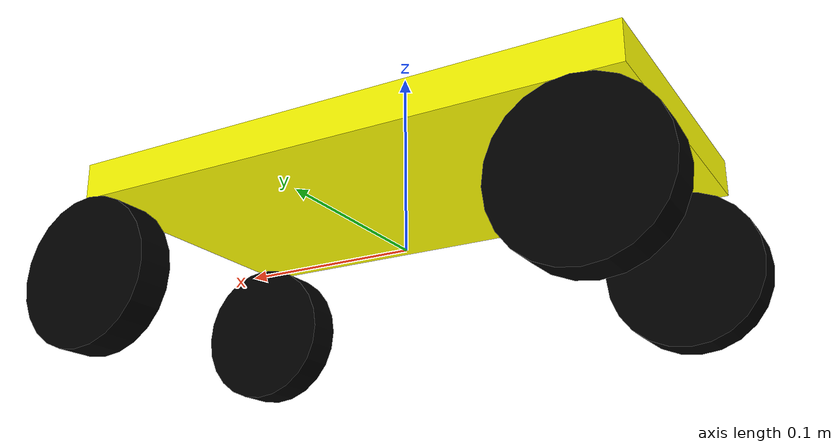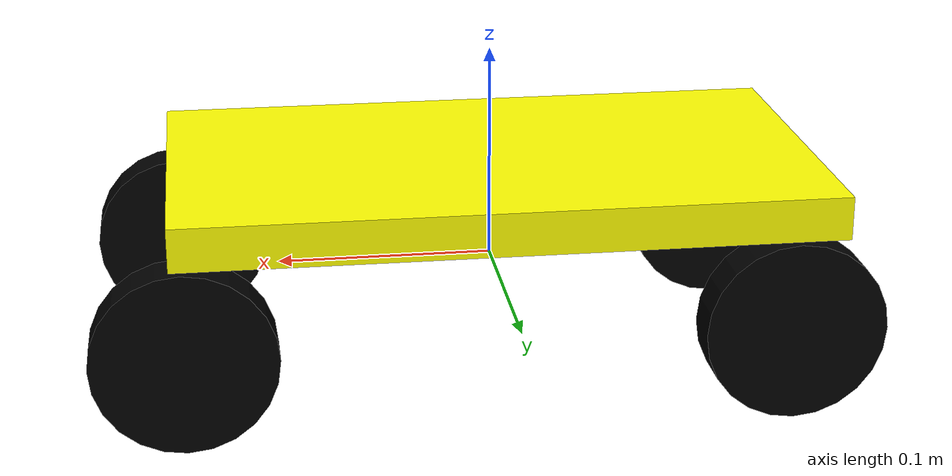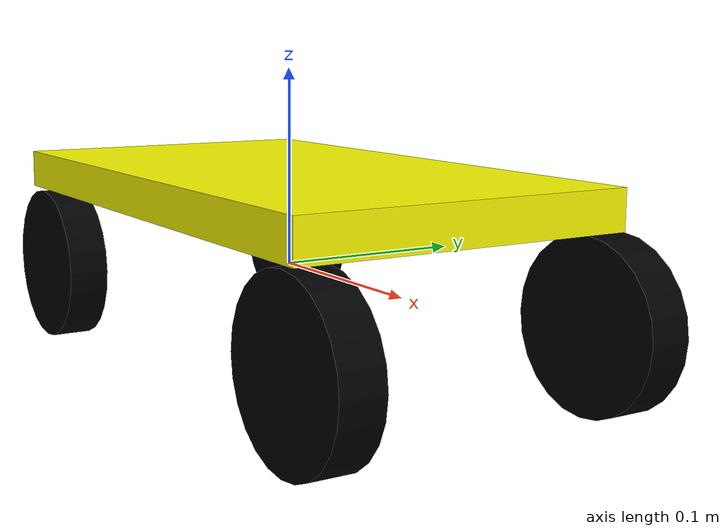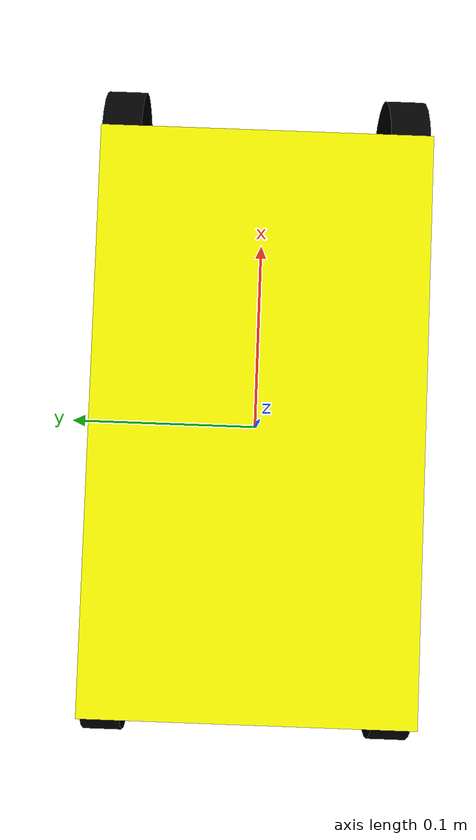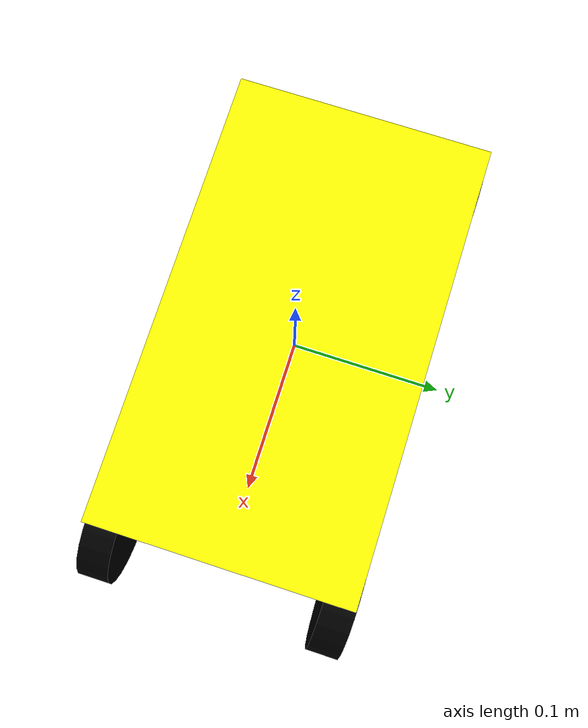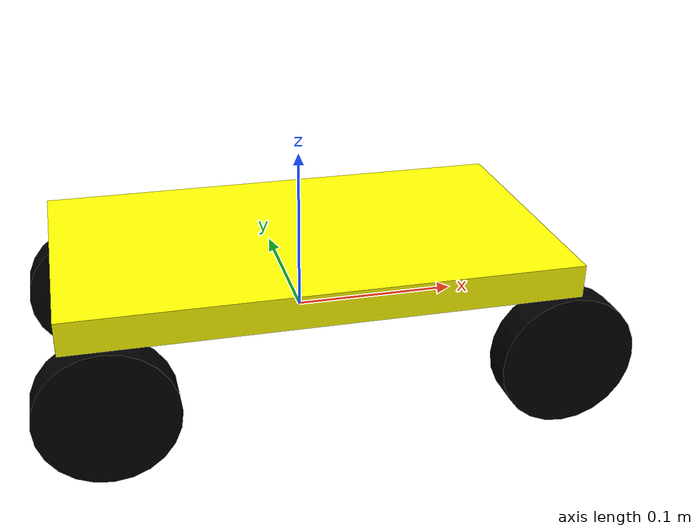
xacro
<?xml version="1.0"?>
<robot name="tamiyabot" xmlns:xacro="http://www.ros.org/wiki/xacro">

    <!-- Load Simulated or Real Hardware Interfaces -->
    <xacro:arg name="is_sim" default="true"/>

    <material name="white">
        <color rgba="1 1 1 1"/>
    </material>
    <material name="yellow">
        <color rgba="1 1 0 1"/>
    </material>
    <material name="black">
        <color rgba="0 0 0 1"/>
    </material>

    <xacro:property name="base_length" value="0.3" />
    <xacro:property name="base_width" value="0.17" />
    <xacro:property name="base_height" value="0.02" />
    <xacro:property name="base_mass" value="2.5" /> <!--Kg-->

    <!-- Wheel link dimensions -->
    <xacro:property name="wheel_radius" value="0.0415" />
    <xacro:property name="wheel_thickness" value="0.021" />
    <xacro:property name="wheel_mass" value="1" />
    <xacro:property name="wheel_down" value="-0.052" />
    <!-- Properties -->
    <xacro:property name="steer_effort" value="1000.0"/>
    <xacro:property name="steer_velocity" value="5.0"/>
    <xacro:property name="steer_limit_deg" value="45.0"/>
    <!-- Math constants -->
    <xacro:property name="deg_to_rad" value="0.01745329251994329577"/>

    <link name="base_footprint"/>

    <link name="base_link">
        <inertial>
            <mass value="1.5"/>
            <inertia ixx="0.1" ixy="0.0" ixz="0.0" iyy="0.1" iyz="0.0" izz="0.1"/>
        </inertial>
        <visual>
            <origin xyz="0.0 0.0 0.0" rpy="0.0 0.0 0.0"/>
            <geometry>
                <box size="0.3 0.17 0.02"/>
            </geometry>
            <material name="yellow"/>
        </visual>
        <collision>
            <origin xyz="0.0 0.0 0.0" rpy="0.0 0.0 0.0"/>
            <geometry>
                <box size="0.3 0.17 0.02"/>
            </geometry>
        </collision>
    </link>

    <link name="front_left_wheel">
        <inertial>
            <mass value="1.5"/>
            <inertia ixx="0.1" ixy="0.0" ixz="0.0" iyy="0.1" iyz="0.0" izz="0.1"/>
        </inertial>
        <visual>
            <origin xyz="0.0 0.0 0.0" rpy="1.5708 0.0 0.0"/>
            <geometry>
                <cylinder radius="${wheel_radius}" length="${wheel_thickness}"/>
            </geometry>
            <material name="black"/>
        </visual>
        <collision>
            <origin xyz="0.0 0.0 0.0" rpy="1.5708 0.0 0.0"/>
            <geometry>
                <cylinder radius="${wheel_radius}" length="${wheel_thickness}"/>
            </geometry>
        </collision>
    </link>

    <link name="left_kingpin">
        <inertial>
            <mass value="1.5"/>
            <inertia ixx="0.1" ixy="0.0" ixz="0.0" iyy="0.1" iyz="0.0" izz="0.1"/>
        </inertial>
        <visual>
            <origin xyz="0.0 0.0 0.0" rpy="0.0 0.0 0.0"/>
            <geometry>
                <cylinder radius="0.01" length="0.02"/>
            </geometry>
            <material name="white"/>
        </visual>
        <collision>
            <origin xyz="0.0 0.0 0.0" rpy="0.0 0.0 0.0"/>
            <geometry>
                <cylinder radius="0.01" length="0.02"/>
            </geometry>
        </collision>
    </link>

    <link name="right_kingpin">
        <inertial>
            <mass value="1.5"/>
            <inertia ixx="0.1" ixy="0.0" ixz="0.0" iyy="0.1" iyz="0.0" izz="0.1"/>
        </inertial>
        <visual>
            <origin xyz="0.0 0.0 0.0" rpy="0.0 0.0 0.0"/>
            <geometry>
                <cylinder radius="0.01" length="0.02"/>
            </geometry>
            <material name="white"/>
        </visual>
        <collision>
            <origin xyz="0.0 0.0 0.0" rpy="0.0 0.0 0.0"/>
            <geometry>
                <cylinder radius="0.01" length="0.02"/>
            </geometry>
        </collision>
    </link>

    <link name="front_right_wheel">
        <inertial>
            <mass value="1.5"/>
            <inertia ixx="0.1" ixy="0.0" ixz="0.0" iyy="0.1" iyz="0.0" izz="0.1"/>
        </inertial>
        <visual>
            <origin xyz="0.0 0.0 0.0" rpy="1.5708 0.0 0.0"/>
            <geometry>
                <cylinder radius="${wheel_radius}" length="${wheel_thickness}"/>
            </geometry>
            <material name="black"/>
        </visual>
        <collision>
            <origin xyz="0.0 0.0 0.0" rpy="1.5708 0.0 0.0"/>
            <geometry>
                <cylinder radius="${wheel_radius}" length="${wheel_thickness}"/>
            </geometry>
        </collision>
    </link>

    <!-- rear wheels -->
    <link name="rear_left_wheel">
        <inertial>
            <mass value="1.5"/>
            <inertia ixx="0.1" ixy="0.0" ixz="0.0" iyy="0.1" iyz="0.0" izz="0.1"/>
        </inertial>
        <visual>
            <origin xyz="0.0 0.0 0.0" rpy="1.5708 0.0 0.0"/>
            <geometry>
                <cylinder radius="${wheel_radius}" length="${wheel_thickness}"/>
            </geometry>
            <material name="black"/>
        </visual>
        <collision>
            <origin xyz="0.0 0.0 0.0" rpy="1.5708 0.0 0.0"/>
            <geometry>
                <cylinder radius="${wheel_radius}" length="${wheel_thickness}"/>
            </geometry>
        </collision>
    </link>

    <link name="rear_right_wheel">
        <inertial>
            <mass value="1.5"/>
            <inertia ixx="0.1" ixy="0.0" ixz="0.0" iyy="0.1" iyz="0.0" izz="0.1"/>
        </inertial>
        <visual>
            <origin xyz="0.0 0.0 0.0" rpy="1.5708 0.0 0.0"/>
            <geometry>
                <cylinder radius="${wheel_radius}" length="${wheel_thickness}"/>
            </geometry>
            <material name="black"/>
        </visual>
        <collision>
            <origin xyz="0.0 0.0 0.0" rpy="1.5708 0.0 0.0"/>
            <geometry>
                <cylinder radius="${wheel_radius}" length="${wheel_thickness}"/>
            </geometry>
        </collision>
    </link>

    <!-- Define the joints -->
    <joint name="base_joint" type="fixed">
        <parent link="base_footprint"/>
        <child link="base_link"/>
        <origin xyz="0.0 0.0 0.04" rpy="0.0 0.0 0.0"/>
    </joint>

    <!-- steering wheel joints -->
    <joint name="front_left_steering_joint" type="revolute">
        <parent link="base_link"/>
        <child link="left_kingpin"/>
        <origin xyz="0.145 0.077 ${wheel_down}" rpy="0.0 0.0 0.0"/>
        <axis xyz="0 0 1"/>
        <limit effort="1000.0" lower="-0.78" upper="0.78" velocity="30"/>
    </joint>

    <joint name="front_right_steering_joint" type="revolute">
        <parent link="base_link"/>
        <child link="right_kingpin"/>
        <origin xyz="0.145 -0.077 ${wheel_down}" rpy="0.0 0.0 0.0"/>
        <axis xyz="0 0 1"/>
        <limit effort="1000.0" lower="-0.78" upper="0.78" velocity="30"/>
    </joint>

    <!-- rear wheel joints -->
    <joint name="rear_left_wheel_joint" type="continuous">
        <parent link="base_link"/>
        <child link="rear_left_wheel"/>
        <origin xyz="-0.127 0.077 ${wheel_down}" rpy="0.0 0.0 0.0"/>
        <axis xyz="0 1 0"/>
        <dynamics damping="0.2" />
    </joint>

    <joint name="rear_right_wheel_joint" type="continuous">
        <parent link="base_link"/>
        <child link="rear_right_wheel"/>
        <origin xyz="-0.127 -0.077 ${wheel_down}" rpy="0.0 0.0 0.0"/>
        <axis xyz="0 1 0"/>
        <dynamics damping="0.2" />
    </joint>

    <!-- front wheel joints -->
    <joint name="front_left_wheel_joint" type="continuous">
        <parent link="left_kingpin"/>
        <child link="front_left_wheel"/>
        <origin xyz="0.0 0.00 0.0" rpy="0.0 0.0 0.0"/>
        <axis xyz="0 1 0"/>
        <dynamics damping="0.2" />
    </joint>

    <joint name="front_right_wheel_joint" type="continuous">
        <parent link="right_kingpin"/>
        <child link="front_right_wheel"/>
        <origin xyz="0.0 0.00 0.0" rpy="0.0 0.0 0.0"/>
        <axis xyz="0 1 0"/>
        <dynamics damping="0.2" />
    </joint>
</robot>
